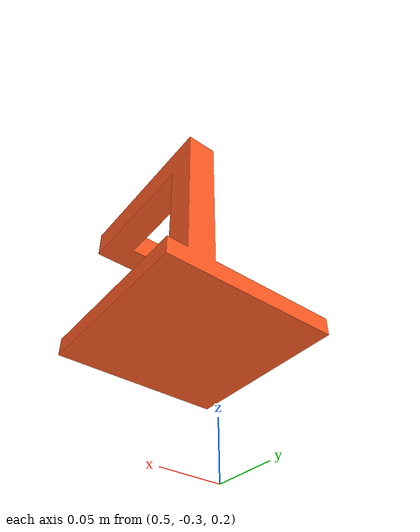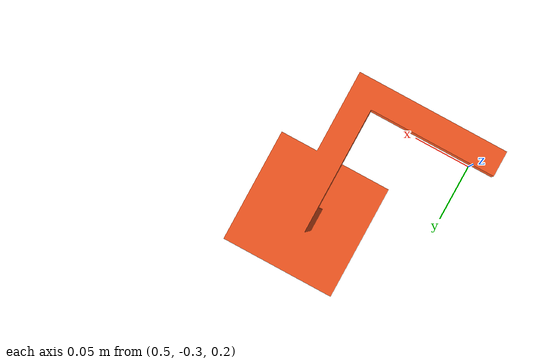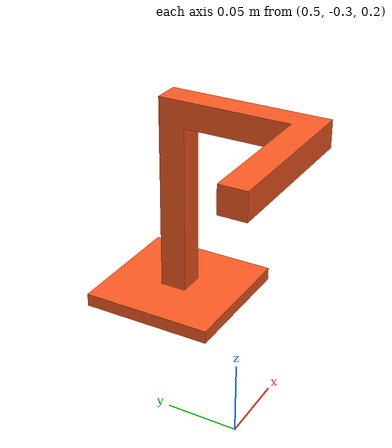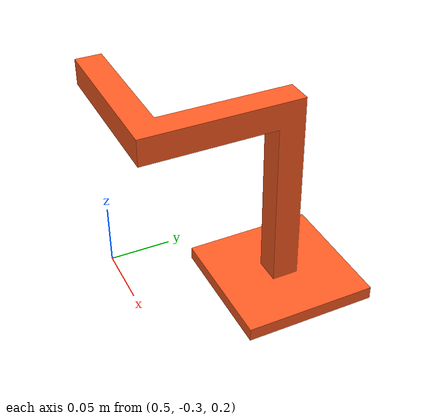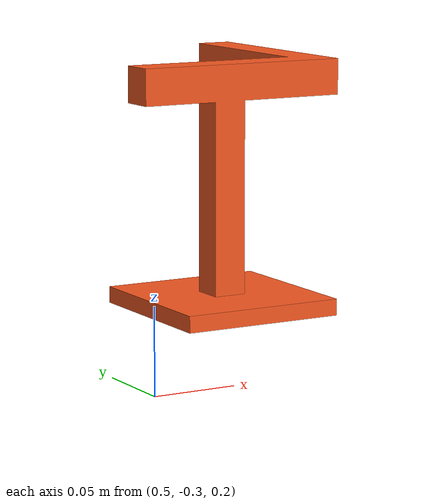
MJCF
<mujoco model="wire_base">
    <asset>
        <material name="orange_mat" rgba="1 0.356 0.133 1.0"/>
        <mesh name="my_mesh" file="/path/to/Intervention_IL_AR/intervene_base/mujoco_scenes/wire_and_loop_assets/Basic_Model_Body.stl" scale="0.001 0.001 0.001"/>
    </asset>

    <default>
        <default class="wire_base_collision">
            <geom contype="1" conaffinity="1"
                  rgba="0 0 0 0"
                  friction="0 0 0"
                  solref="0.01 1"
                  solimp="0.95 0.99 0.001 0.5 2"
                  condim="1"
                  margin="0"
                  gap="0"/>
        </default>
    </default>

    <worldbody>
        <body name="object" pos="0.6 -0.2 0.22">
            <geom type="mesh" mesh="my_mesh" material="orange_mat"
                  contype="0" conaffinity="0"/>

            <!-- base plate -->
            <geom name="body_col_base" type="box" class="wire_base_collision"
                  pos="0 0 0.005" friction="10.0 0.1 0.1"
                  size="0.05 0.05 0.005"/>

            <!-- vertical stem -->
            <geom name="body_col_stem" type="capsule" class="wire_base_collision"
                  pos="0 0 0.08"
                  quat="1 0 0 0"
                  size="0.011 0.06"/>

            <!-- top horizontal arm -->
            <geom name="body_col_top_x" type="capsule" class="wire_base_collision"
                  pos="-0.05 -0.10 0.15"
                  quat="0.707107 0 0.707107 0"
                  size="0.011 0.05"/>

            <!-- top vertical arm in XY plane -->
            <geom name="body_col_top_y" type="capsule" class="wire_base_collision"
                  pos="0.0 -0.05 0.15"
                  quat="0.707107 0.707107 0 0"
                  size="0.011 0.05"/>
        </body>
    </worldbody>
</mujoco>
